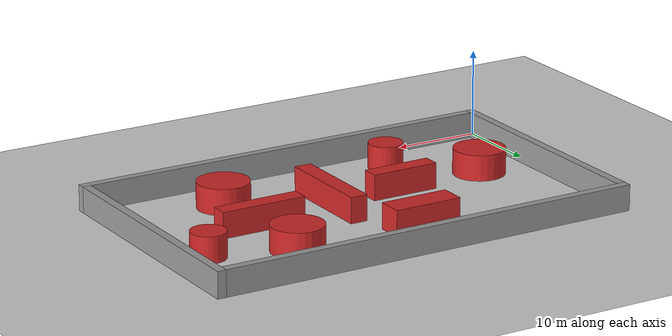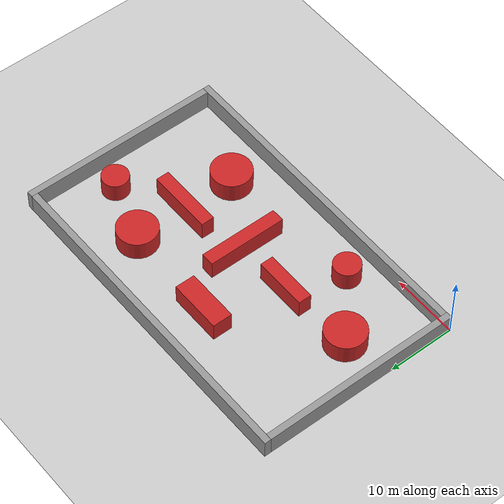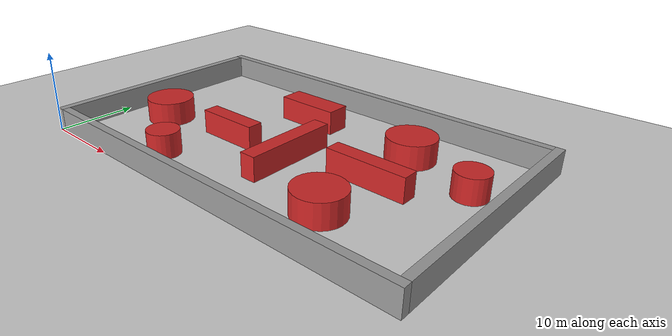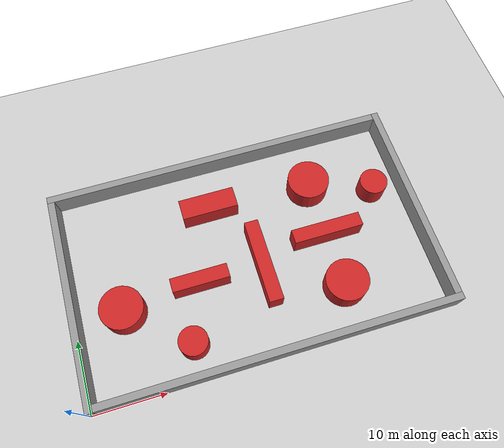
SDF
<sdf version="1.7">
 <world name="default">
  <light name="sun" type="directional">
   <pose>0 0 10 0 -0 0</pose>
   <diffuse>0.8 0.8 0.8 1</diffuse>
   <specular>0.2 0.2 0.2 1</specular>
   <attenuation>
    <range>1000</range>
    <constant>0.9</constant>
    <linear>0.01</linear>
    <quadratic>0.001</quadratic>
   </attenuation>
   <direction>-0.5 0.1 -0.9</direction>
   <spot><inner_angle>0</inner_angle><outer_angle>0</outer_angle><falloff>0</falloff></spot>
  </light>
  <model name="ground_plane">
   <static>1</static>
   <link name="link">
    <collision name="collision">
     <geometry><plane><normal>0 0 1</normal><size>100 100</size></plane></geometry>
     <surface><friction><ode><mu>100</mu><mu2>50</mu2></ode></friction></surface>
    </collision>
    <visual name="visual">
     <cast_shadows>0</cast_shadows>
     <geometry><plane><normal>0 0 1</normal><size>100 100</size></plane></geometry>
     <material>
      <script><uri>file://media/materials/scripts/gazebo.material</uri><name>Gazebo/Grey</name></script>
     </material>
    </visual>
   </link>
  </model>
  <gravity>0 0 -9.8</gravity>
  <magnetic_field>6e-06 2.3e-05 -4.2e-05</magnetic_field>
  <atmosphere type="adiabatic"/>
  <physics type="ode">
   <max_step_size>0.001</max_step_size>
   <real_time_factor>1</real_time_factor>
   <real_time_update_rate>1000</real_time_update_rate>
  </physics>
  <scene><ambient>0.4 0.4 0.4 1</ambient><background>0.7 0.7 0.7 1</background><shadows>1</shadows></scene>
  <spherical_coordinates>
   <surface_model>EARTH_WGS84</surface_model>
   <latitude_deg>0</latitude_deg>
   <longitude_deg>0</longitude_deg>
   <elevation>0</elevation>
   <heading_deg>0</heading_deg>
  </spherical_coordinates>
  <model name="unit_box">
   <link name="link">
    <inertial>
     <mass>1</mass>
     <inertia>
      <ixx>0.166667</ixx>
      <ixy>0</ixy>
      <ixz>0</ixz>
      <iyy>0.166667</iyy>
      <iyz>0</iyz>
      <izz>0.166667</izz>
     </inertia>
    </inertial>
    <visual name="visual">
     <geometry><box><size>8 2 3</size></box></geometry>
     <material>
      <script><name>Gazebo/Red</name><uri>file://media/materials/scripts/gazebo.material</uri></script>
      <shader type="pixel"><normal_map>__default__</normal_map></shader>
      <ambient>1 0 0 1</ambient>
      <diffuse>1 0 0 1</diffuse>
      <specular>0.1 0.1 0.1 1</specular>
      <emissive>0 0 0 1</emissive>
     </material>
    </visual>
    <collision name="collision">
     <geometry><box><size>8 2 3</size></box></geometry>
     <surface>
      <friction>
       <ode><mu>1</mu><mu2>1</mu2><fdir1>0 0 0</fdir1><slip1>0</slip1><slip2>0</slip2></ode>
       <torsional>
        <coefficient>1</coefficient>
        <patch_radius>0</patch_radius>
        <surface_radius>0</surface_radius>
        <use_patch_radius>1</use_patch_radius>
        <ode><slip>0</slip></ode>
       </torsional>
      </friction>
      <bounce><restitution_coefficient>0</restitution_coefficient><threshold>1e+06</threshold></bounce>
      <contact>
       <collide_without_contact>0</collide_without_contact>
       <collide_without_contact_bitmask>1</collide_without_contact_bitmask>
       <collide_bitmask>1</collide_bitmask>
       <ode>
        <soft_cfm>0</soft_cfm>
        <soft_erp>0.2</soft_erp>
        <kp>1e+13</kp>
        <kd>1</kd>
        <max_vel>0.01</max_vel>
        <min_depth>0</min_depth>
       </ode>
       <bullet>
        <split_impulse>1</split_impulse>
        <split_impulse_penetration_threshold>-0.01</split_impulse_penetration_threshold>
        <soft_cfm>0</soft_cfm>
        <soft_erp>0.2</soft_erp>
        <kp>1e+13</kp>
        <kd>1</kd>
       </bullet>
      </contact>
     </surface>
    </collision>
   </link>
   <static>0</static>
   <pose>18 13 1.5 0 -0 0</pose>
  </model>
  <model name="unit_box_clone">
   <link name="link">
    <inertial>
     <mass>1</mass>
     <inertia>
      <ixx>0.166667</ixx>
      <ixy>0</ixy>
      <ixz>0</ixz>
      <iyy>0.166667</iyy>
      <iyz>0</iyz>
      <izz>0.166667</izz>
     </inertia>
    </inertial>
    <visual name="visual">
     <geometry><box><size>8 3 3</size></box></geometry>
     <material>
      <script><name>Gazebo/Red</name><uri>file://media/materials/scripts/gazebo.material</uri></script>
      <shader type="pixel"><normal_map>__default__</normal_map></shader>
      <ambient>1 0 0 1</ambient>
      <diffuse>1 0 0 1</diffuse>
      <specular>0.1 0.1 0.1 1</specular>
      <emissive>0 0 0 1</emissive>
     </material>
    </visual>
    <collision name="collision">
     <geometry><box><size>8 3 3</size></box></geometry>
     <surface>
      <friction>
       <ode><mu>1</mu><mu2>1</mu2><fdir1>0 0 0</fdir1><slip1>0</slip1><slip2>0</slip2></ode>
       <torsional>
        <coefficient>1</coefficient>
        <patch_radius>0</patch_radius>
        <surface_radius>0</surface_radius>
        <use_patch_radius>1</use_patch_radius>
        <ode><slip>0</slip></ode>
       </torsional>
      </friction>
      <bounce><restitution_coefficient>0</restitution_coefficient><threshold>1e+06</threshold></bounce>
      <contact>
       <collide_without_contact>0</collide_without_contact>
       <collide_without_contact_bitmask>1</collide_without_contact_bitmask>
       <collide_bitmask>1</collide_bitmask>
       <ode>
        <soft_cfm>0</soft_cfm>
        <soft_erp>0.2</soft_erp>
        <kp>1e+13</kp>
        <kd>1</kd>
        <max_vel>0.01</max_vel>
        <min_depth>0</min_depth>
       </ode>
       <bullet>
        <split_impulse>1</split_impulse>
        <split_impulse_penetration_threshold>-0.01</split_impulse_penetration_threshold>
        <soft_cfm>0</soft_cfm>
        <soft_erp>0.2</soft_erp>
        <kp>1e+13</kp>
        <kd>1</kd>
       </bullet>
      </contact>
     </surface>
    </collision>
   </link>
   <static>0</static>
   <pose>22 23.5 1.5 0 -0 0</pose>
  </model>
  <model name="unit_box_clone_0">
   <link name="link">
    <inertial>
     <mass>1</mass>
     <inertia>
      <ixx>0.166667</ixx>
      <ixy>0</ixy>
      <ixz>0</ixz>
      <iyy>0.166667</iyy>
      <iyz>0</iyz>
      <izz>0.166667</izz>
     </inertia>
    </inertial>
    <visual name="visual">
     <geometry><box><size>2 12 3</size></box></geometry>
     <material>
      <script><name>Gazebo/Red</name><uri>file://media/materials/scripts/gazebo.material</uri></script>
      <shader type="pixel"><normal_map>__default__</normal_map></shader>
      <ambient>1 0 0 1</ambient>
      <diffuse>1 0 0 1</diffuse>
      <specular>0.1 0.1 0.1 1</specular>
      <emissive>0 0 0 1</emissive>
     </material>
    </visual>
    <collision name="collision">
     <geometry><box><size>2 12 3</size></box></geometry>
     <surface>
      <friction>
       <ode><mu>1</mu><mu2>1</mu2><fdir1>0 0 0</fdir1><slip1>0</slip1><slip2>0</slip2></ode>
       <torsional>
        <coefficient>1</coefficient>
        <patch_radius>0</patch_radius>
        <surface_radius>0</surface_radius>
        <use_patch_radius>1</use_patch_radius>
        <ode><slip>0</slip></ode>
       </torsional>
      </friction>
      <bounce><restitution_coefficient>0</restitution_coefficient><threshold>1e+06</threshold></bounce>
      <contact>
       <collide_without_contact>0</collide_without_contact>
       <collide_without_contact_bitmask>1</collide_without_contact_bitmask>
       <collide_bitmask>1</collide_bitmask>
       <ode>
        <soft_cfm>0</soft_cfm>
        <soft_erp>0.2</soft_erp>
        <kp>1e+13</kp>
        <kd>1</kd>
        <max_vel>0.01</max_vel>
        <min_depth>0</min_depth>
       </ode>
       <bullet>
        <split_impulse>1</split_impulse>
        <split_impulse_penetration_threshold>-0.01</split_impulse_penetration_threshold>
        <soft_cfm>0</soft_cfm>
        <soft_erp>0.2</soft_erp>
        <kp>1e+13</kp>
        <kd>1</kd>
       </bullet>
      </contact>
     </surface>
    </collision>
   </link>
   <static>0</static>
   <pose>27 13 1.5 0 -0 0</pose>
  </model>
  <model name="unit_box_clone_1">
   <link name="link">
    <inertial>
     <mass>1</mass>
     <inertia>
      <ixx>0.166667</ixx>
      <ixy>0</ixy>
      <ixz>0</ixz>
      <iyy>0.166667</iyy>
      <iyz>0</iyz>
      <izz>0.166667</izz>
     </inertia>
    </inertial>
    <visual name="visual">
     <geometry><box><size>10 2 3</size></box></geometry>
     <material>
      <script><name>Gazebo/Red</name><uri>file://media/materials/scripts/gazebo.material</uri></script>
      <shader type="pixel"><normal_map>__default__</normal_map></shader>
      <ambient>1 0 0 1</ambient>
      <diffuse>1 0 0 1</diffuse>
      <specular>0.1 0.1 0.1 1</specular>
      <emissive>0 0 0 1</emissive>
     </material>
    </visual>
    <collision name="collision">
     <geometry><box><size>10 2 3</size></box></geometry>
     <surface>
      <friction>
       <ode><mu>1</mu><mu2>1</mu2><fdir1>0 0 0</fdir1><slip1>0</slip1><slip2>0</slip2></ode>
       <torsional>
        <coefficient>1</coefficient>
        <patch_radius>0</patch_radius>
        <surface_radius>0</surface_radius>
        <use_patch_radius>1</use_patch_radius>
        <ode><slip>0</slip></ode>
       </torsional>
      </friction>
      <bounce><restitution_coefficient>0</restitution_coefficient><threshold>1e+06</threshold></bounce>
      <contact>
       <collide_without_contact>0</collide_without_contact>
       <collide_without_contact_bitmask>1</collide_without_contact_bitmask>
       <collide_bitmask>1</collide_bitmask>
       <ode>
        <soft_cfm>0</soft_cfm>
        <soft_erp>0.2</soft_erp>
        <kp>1e+13</kp>
        <kd>1</kd>
        <max_vel>0.01</max_vel>
        <min_depth>0</min_depth>
       </ode>
       <bullet>
        <split_impulse>1</split_impulse>
        <split_impulse_penetration_threshold>-0.01</split_impulse_penetration_threshold>
        <soft_cfm>0</soft_cfm>
        <soft_erp>0.2</soft_erp>
        <kp>1e+13</kp>
        <kd>1</kd>
       </bullet>
      </contact>
     </surface>
    </collision>
   </link>
   <static>0</static>
   <pose>37 15 1.5 0 -0 0</pose>
  </model>
  <model name="unit_cylinder">
   <link name="link">
    <inertial>
     <mass>1</mass>
     <inertia><ixx>0.145833</ixx><ixy>0</ixy><ixz>0</ixz><iyy>0.145833</iyy><iyz>0</iyz><izz>0.125</izz></inertia>
    </inertial>
    <visual name="visual">
     <geometry><cylinder><radius>3</radius><length>3</length></cylinder></geometry>
     <material>
      <script><name>Gazebo/Red</name><uri>file://media/materials/scripts/gazebo.material</uri></script>
      <shader type="pixel"><normal_map>__default__</normal_map></shader>
      <ambient>1 0 0 1</ambient>
      <diffuse>1 0 0 1</diffuse>
      <specular>0.1 0.1 0.1 1</specular>
      <emissive>0 0 0 1</emissive>
     </material>
    </visual>
    <collision name="collision">
     <geometry><cylinder><radius>3</radius><length>3</length></cylinder></geometry>
     <surface>
      <friction>
       <ode><mu>1</mu><mu2>1</mu2><fdir1>0 0 0</fdir1><slip1>0</slip1><slip2>0</slip2></ode>
       <torsional>
        <coefficient>1</coefficient>
        <patch_radius>0</patch_radius>
        <surface_radius>0</surface_radius>
        <use_patch_radius>1</use_patch_radius>
        <ode><slip>0</slip></ode>
       </torsional>
      </friction>
      <bounce><restitution_coefficient>0</restitution_coefficient><threshold>1e+06</threshold></bounce>
      <contact>
       <collide_without_contact>0</collide_without_contact>
       <collide_without_contact_bitmask>1</collide_without_contact_bitmask>
       <collide_bitmask>1</collide_bitmask>
       <ode>
        <soft_cfm>0</soft_cfm>
        <soft_erp>0.2</soft_erp>
        <kp>1e+13</kp>
        <kd>1</kd>
        <max_vel>0.01</max_vel>
        <min_depth>0</min_depth>
       </ode>
       <bullet>
        <split_impulse>1</split_impulse>
        <split_impulse_penetration_threshold>-0.01</split_impulse_penetration_threshold>
        <soft_cfm>0</soft_cfm>
        <soft_erp>0.2</soft_erp>
        <kp>1e+13</kp>
        <kd>1</kd>
       </bullet>
      </contact>
     </surface>
    </collision>
   </link>
   <static>0</static>
   <pose>7 12 1.5 0 -0 0</pose>
  </model>
  <model name="unit_cylinder_clone">
   <link name="link">
    <inertial>
     <mass>1</mass>
     <inertia><ixx>0.145833</ixx><ixy>0</ixy><ixz>0</ixz><iyy>0.145833</iyy><iyz>0</iyz><izz>0.125</izz></inertia>
    </inertial>
    <visual name="visual">
     <geometry><cylinder><radius>2</radius><length>3</length></cylinder></geometry>
     <material>
      <script><name>Gazebo/Red</name><uri>file://media/materials/scripts/gazebo.material</uri></script>
      <shader type="pixel"><normal_map>__default__</normal_map></shader>
      <ambient>1 0 0 1</ambient>
      <diffuse>1 0 0 1</diffuse>
      <specular>0.1 0.1 0.1 1</specular>
      <emissive>0 0 0 1</emissive>
     </material>
    </visual>
    <collision name="collision">
     <geometry><cylinder><radius>2</radius><length>3</length></cylinder></geometry>
     <surface>
      <friction>
       <ode><mu>1</mu><mu2>1</mu2><fdir1>0 0 0</fdir1><slip1>0</slip1><slip2>0</slip2></ode>
       <torsional>
        <coefficient>1</coefficient>
        <patch_radius>0</patch_radius>
        <surface_radius>0</surface_radius>
        <use_patch_radius>1</use_patch_radius>
        <ode><slip>0</slip></ode>
       </torsional>
      </friction>
      <bounce><restitution_coefficient>0</restitution_coefficient><threshold>1e+06</threshold></bounce>
      <contact>
       <collide_without_contact>0</collide_without_contact>
       <collide_without_contact_bitmask>1</collide_without_contact_bitmask>
       <collide_bitmask>1</collide_bitmask>
       <ode>
        <soft_cfm>0</soft_cfm>
        <soft_erp>0.2</soft_erp>
        <kp>1e+13</kp>
        <kd>1</kd>
        <max_vel>0.01</max_vel>
        <min_depth>0</min_depth>
       </ode>
       <bullet>
        <split_impulse>1</split_impulse>
        <split_impulse_penetration_threshold>-0.01</split_impulse_penetration_threshold>
        <soft_cfm>0</soft_cfm>
        <soft_erp>0.2</soft_erp>
        <kp>1e+13</kp>
        <kd>1</kd>
       </bullet>
      </contact>
     </surface>
    </collision>
   </link>
   <static>0</static>
   <pose>46 20 1.5 0 -0 0</pose>
  </model>
  <model name="unit_cylinder_clone_1">
   <link name="link">
    <inertial>
     <mass>1</mass>
     <inertia><ixx>0.145833</ixx><ixy>0</ixy><ixz>0</ixz><iyy>0.145833</iyy><iyz>0</iyz><izz>0.125</izz></inertia>
    </inertial>
    <visual name="visual">
     <geometry><cylinder><radius>3</radius><length>3</length></cylinder></geometry>
     <material>
      <script><name>Gazebo/Red</name><uri>file://media/materials/scripts/gazebo.material</uri></script>
      <shader type="pixel"><normal_map>__default__</normal_map></shader>
      <ambient>1 0 0 1</ambient>
      <diffuse>1 0 0 1</diffuse>
      <specular>0.1 0.1 0.1 1</specular>
      <emissive>0 0 0 1</emissive>
     </material>
    </visual>
    <collision name="collision">
     <geometry><cylinder><radius>3</radius><length>3</length></cylinder></geometry>
     <surface>
      <friction>
       <ode><mu>1</mu><mu2>1</mu2><fdir1>0 0 0</fdir1><slip1>0</slip1><slip2>0</slip2></ode>
       <torsional>
        <coefficient>1</coefficient>
        <patch_radius>0</patch_radius>
        <surface_radius>0</surface_radius>
        <use_patch_radius>1</use_patch_radius>
        <ode><slip>0</slip></ode>
       </torsional>
      </friction>
      <bounce><restitution_coefficient>0</restitution_coefficient><threshold>1e+06</threshold></bounce>
      <contact>
       <collide_without_contact>0</collide_without_contact>
       <collide_without_contact_bitmask>1</collide_without_contact_bitmask>
       <collide_bitmask>1</collide_bitmask>
       <ode>
        <soft_cfm>0</soft_cfm>
        <soft_erp>0.2</soft_erp>
        <kp>1e+13</kp>
        <kd>1</kd>
        <max_vel>0.01</max_vel>
        <min_depth>0</min_depth>
       </ode>
       <bullet>
        <split_impulse>1</split_impulse>
        <split_impulse_penetration_threshold>-0.01</split_impulse_penetration_threshold>
        <soft_cfm>0</soft_cfm>
        <soft_erp>0.2</soft_erp>
        <kp>1e+13</kp>
        <kd>1</kd>
       </bullet>
      </contact>
     </surface>
    </collision>
   </link>
   <static>0</static>
   <pose>37 7 1.5 0 -0 0</pose>
  </model>
  <model name="unit_cylinder_clone_2">
   <link name="link">
    <inertial>
     <mass>1</mass>
     <inertia><ixx>0.145833</ixx><ixy>0</ixy><ixz>0</ixz><iyy>0.145833</iyy><iyz>0</iyz><izz>0.125</izz></inertia>
    </inertial>
    <visual name="visual">
     <geometry><cylinder><radius>3</radius><length>3</length></cylinder></geometry>
     <material>
      <script><name>Gazebo/Red</name><uri>file://media/materials/scripts/gazebo.material</uri></script>
      <shader type="pixel"><normal_map>__default__</normal_map></shader>
      <ambient>1 0 0 1</ambient>
      <diffuse>1 0 0 1</diffuse>
      <specular>0.1 0.1 0.1 1</specular>
      <emissive>0 0 0 1</emissive>
     </material>
    </visual>
    <collision name="collision">
     <geometry><cylinder><radius>3</radius><length>3</length></cylinder></geometry>
     <surface>
      <friction>
       <ode><mu>1</mu><mu2>1</mu2><fdir1>0 0 0</fdir1><slip1>0</slip1><slip2>0</slip2></ode>
       <torsional>
        <coefficient>1</coefficient>
        <patch_radius>0</patch_radius>
        <surface_radius>0</surface_radius>
        <use_patch_radius>1</use_patch_radius>
        <ode><slip>0</slip></ode>
       </torsional>
      </friction>
      <bounce><restitution_coefficient>0</restitution_coefficient><threshold>1e+06</threshold></bounce>
      <contact>
       <collide_without_contact>0</collide_without_contact>
       <collide_without_contact_bitmask>1</collide_without_contact_bitmask>
       <collide_bitmask>1</collide_bitmask>
       <ode>
        <soft_cfm>0</soft_cfm>
        <soft_erp>0.2</soft_erp>
        <kp>1e+13</kp>
        <kd>1</kd>
        <max_vel>0.01</max_vel>
        <min_depth>0</min_depth>
       </ode>
       <bullet>
        <split_impulse>1</split_impulse>
        <split_impulse_penetration_threshold>-0.01</split_impulse_penetration_threshold>
        <soft_cfm>0</soft_cfm>
        <soft_erp>0.2</soft_erp>
        <kp>1e+13</kp>
        <kd>1</kd>
       </bullet>
      </contact>
     </surface>
    </collision>
   </link>
   <static>0</static>
   <pose>37 23 1.5 0 -0 0</pose>
  </model>
  <model name="unit_cylinder_clone_0">
   <link name="link">
    <inertial>
     <mass>1</mass>
     <inertia><ixx>0.145833</ixx><ixy>0</ixy><ixz>0</ixz><iyy>0.145833</iyy><iyz>0</iyz><izz>0.125</izz></inertia>
    </inertial>
    <visual name="visual">
     <geometry><cylinder><radius>2</radius><length>3</length></cylinder></geometry>
     <material>
      <script><name>Gazebo/Red</name><uri>file://media/materials/scripts/gazebo.material</uri></script>
      <shader type="pixel"><normal_map>__default__</normal_map></shader>
      <ambient>1 0 0 1</ambient>
      <diffuse>1 0 0 1</diffuse>
      <specular>0.1 0.1 0.1 1</specular>
      <emissive>0 0 0 1</emissive>
     </material>
    </visual>
    <collision name="collision">
     <geometry><cylinder><radius>2</radius><length>3</length></cylinder></geometry>
     <surface>
      <friction>
       <ode><mu>1</mu><mu2>1</mu2><fdir1>0 0 0</fdir1><slip1>0</slip1><slip2>0</slip2></ode>
       <torsional>
        <coefficient>1</coefficient>
        <patch_radius>0</patch_radius>
        <surface_radius>0</surface_radius>
        <use_patch_radius>1</use_patch_radius>
        <ode><slip>0</slip></ode>
       </torsional>
      </friction>
      <bounce><restitution_coefficient>0</restitution_coefficient><threshold>1e+06</threshold></bounce>
      <contact>
       <collide_without_contact>0</collide_without_contact>
       <collide_without_contact_bitmask>1</collide_without_contact_bitmask>
       <collide_bitmask>1</collide_bitmask>
       <ode>
        <soft_cfm>0</soft_cfm>
        <soft_erp>0.2</soft_erp>
        <kp>1e+13</kp>
        <kd>1</kd>
        <max_vel>0.01</max_vel>
        <min_depth>0</min_depth>
       </ode>
       <bullet>
        <split_impulse>1</split_impulse>
        <split_impulse_penetration_threshold>-0.01</split_impulse_penetration_threshold>
        <soft_cfm>0</soft_cfm>
        <soft_erp>0.2</soft_erp>
        <kp>1e+13</kp>
        <kd>1</kd>
       </bullet>
      </contact>
     </surface>
    </collision>
   </link>
   <static>0</static>
   <pose>15 5 1.5 0 -0 0</pose>
  </model>
  <model name="unit_box_0">
   <link name="link">
    <inertial>
     <mass>1</mass>
     <inertia>
      <ixx>0.166667</ixx>
      <ixy>0</ixy>
      <ixz>0</ixz>
      <iyy>0.166667</iyy>
      <iyz>0</iyz>
      <izz>0.166667</izz>
     </inertia>
    </inertial>
    <visual name="visual">
     <geometry><box><size>1 30 3</size></box></geometry>
     <material>
      <script><name>Gazebo/Grey</name><uri>file://media/materials/scripts/gazebo.material</uri></script>
      <shader type="pixel"><normal_map>__default__</normal_map></shader>
      <ambient>0.3 0.3 0.3 1</ambient>
      <diffuse>0.7 0.7 0.7 1</diffuse>
      <specular>0.01 0.01 0.01 1</specular>
      <emissive>0 0 0 1</emissive>
     </material>
    </visual>
    <collision name="collision">
     <geometry><box><size>1 30 3</size></box></geometry>
     <surface>
      <friction>
       <ode><mu>1</mu><mu2>1</mu2><fdir1>0 0 0</fdir1><slip1>0</slip1><slip2>0</slip2></ode>
       <torsional>
        <coefficient>1</coefficient>
        <patch_radius>0</patch_radius>
        <surface_radius>0</surface_radius>
        <use_patch_radius>1</use_patch_radius>
        <ode><slip>0</slip></ode>
       </torsional>
      </friction>
      <bounce><restitution_coefficient>0</restitution_coefficient><threshold>1e+06</threshold></bounce>
      <contact>
       <collide_without_contact>0</collide_without_contact>
       <collide_without_contact_bitmask>1</collide_without_contact_bitmask>
       <collide_bitmask>1</collide_bitmask>
       <ode>
        <soft_cfm>0</soft_cfm>
        <soft_erp>0.2</soft_erp>
        <kp>1e+13</kp>
        <kd>1</kd>
        <max_vel>0.01</max_vel>
        <min_depth>0</min_depth>
       </ode>
       <bullet>
        <split_impulse>1</split_impulse>
        <split_impulse_penetration_threshold>-0.01</split_impulse_penetration_threshold>
        <soft_cfm>0</soft_cfm>
        <soft_erp>0.2</soft_erp>
        <kp>1e+13</kp>
        <kd>1</kd>
       </bullet>
      </contact>
     </surface>
    </collision>
   </link>
   <static>0</static>
   <pose>0.5 15 1.5 0 -0 0</pose>
  </model>
  <model name="unit_box_0_clone">
   <link name="link">
    <inertial>
     <mass>1</mass>
     <inertia>
      <ixx>0.166667</ixx>
      <ixy>0</ixy>
      <ixz>0</ixz>
      <iyy>0.166667</iyy>
      <iyz>0</iyz>
      <izz>0.166667</izz>
     </inertia>
    </inertial>
    <visual name="visual">
     <geometry><box><size>1 30 3</size></box></geometry>
     <material>
      <script><name>Gazebo/Grey</name><uri>file://media/materials/scripts/gazebo.material</uri></script>
      <shader type="pixel"><normal_map>__default__</normal_map></shader>
      <ambient>0.3 0.3 0.3 1</ambient>
      <diffuse>0.7 0.7 0.7 1</diffuse>
      <specular>0.01 0.01 0.01 1</specular>
      <emissive>0 0 0 1</emissive>
     </material>
    </visual>
    <collision name="collision">
     <geometry><box><size>1 30 3</size></box></geometry>
     <surface>
      <friction>
       <ode><mu>1</mu><mu2>1</mu2><fdir1>0 0 0</fdir1><slip1>0</slip1><slip2>0</slip2></ode>
       <torsional>
        <coefficient>1</coefficient>
        <patch_radius>0</patch_radius>
        <surface_radius>0</surface_radius>
        <use_patch_radius>1</use_patch_radius>
        <ode><slip>0</slip></ode>
       </torsional>
      </friction>
      <bounce><restitution_coefficient>0</restitution_coefficient><threshold>1e+06</threshold></bounce>
      <contact>
       <collide_without_contact>0</collide_without_contact>
       <collide_without_contact_bitmask>1</collide_without_contact_bitmask>
       <collide_bitmask>1</collide_bitmask>
       <ode>
        <soft_cfm>0</soft_cfm>
        <soft_erp>0.2</soft_erp>
        <kp>1e+13</kp>
        <kd>1</kd>
        <max_vel>0.01</max_vel>
        <min_depth>0</min_depth>
       </ode>
       <bullet>
        <split_impulse>1</split_impulse>
        <split_impulse_penetration_threshold>-0.01</split_impulse_penetration_threshold>
        <soft_cfm>0</soft_cfm>
        <soft_erp>0.2</soft_erp>
        <kp>1e+13</kp>
        <kd>1</kd>
       </bullet>
      </contact>
     </surface>
    </collision>
   </link>
   <static>0</static>
   <pose>50.5 16 1.5 0 -0 0</pose>
  </model>
  <model name="unit_box_0_clone_0">
   <link name="link">
    <inertial>
     <mass>1</mass>
     <inertia>
      <ixx>0.166667</ixx>
      <ixy>0</ixy>
      <ixz>0</ixz>
      <iyy>0.166667</iyy>
      <iyz>0</iyz>
      <izz>0.166667</izz>
     </inertia>
    </inertial>
    <visual name="visual">
     <geometry><box><size>50 1 3</size></box></geometry>
     <material>
      <script><name>Gazebo/Grey</name><uri>file://media/materials/scripts/gazebo.material</uri></script>
      <shader type="pixel"><normal_map>__default__</normal_map></shader>
      <ambient>0.3 0.3 0.3 1</ambient>
      <diffuse>0.7 0.7 0.7 1</diffuse>
      <specular>0.01 0.01 0.01 1</specular>
      <emissive>0 0 0 1</emissive>
     </material>
    </visual>
    <collision name="collision">
     <geometry><box><size>50 1 3</size></box></geometry>
     <surface>
      <friction>
       <ode><mu>1</mu><mu2>1</mu2><fdir1>0 0 0</fdir1><slip1>0</slip1><slip2>0</slip2></ode>
       <torsional>
        <coefficient>1</coefficient>
        <patch_radius>0</patch_radius>
        <surface_radius>0</surface_radius>
        <use_patch_radius>1</use_patch_radius>
        <ode><slip>0</slip></ode>
       </torsional>
      </friction>
      <bounce><restitution_coefficient>0</restitution_coefficient><threshold>1e+06</threshold></bounce>
      <contact>
       <collide_without_contact>0</collide_without_contact>
       <collide_without_contact_bitmask>1</collide_without_contact_bitmask>
       <collide_bitmask>1</collide_bitmask>
       <ode>
        <soft_cfm>0</soft_cfm>
        <soft_erp>0.2</soft_erp>
        <kp>1e+13</kp>
        <kd>1</kd>
        <max_vel>0.01</max_vel>
        <min_depth>0</min_depth>
       </ode>
       <bullet>
        <split_impulse>1</split_impulse>
        <split_impulse_penetration_threshold>-0.01</split_impulse_penetration_threshold>
        <soft_cfm>0</soft_cfm>
        <soft_erp>0.2</soft_erp>
        <kp>1e+13</kp>
        <kd>1</kd>
       </bullet>
      </contact>
     </surface>
    </collision>
   </link>
   <static>0</static>
   <pose>25 30.5 1.5 0 -0 0</pose>
  </model>
  <model name="unit_box_0_clone_1">
   <link name="link">
    <inertial>
     <mass>1</mass>
     <inertia>
      <ixx>0.166667</ixx>
      <ixy>0</ixy>
      <ixz>0</ixz>
      <iyy>0.166667</iyy>
      <iyz>0</iyz>
      <izz>0.166667</izz>
     </inertia>
    </inertial>
    <visual name="visual">
     <geometry><box><size>50 1 3</size></box></geometry>
     <material>
      <script><name>Gazebo/Grey</name><uri>file://media/materials/scripts/gazebo.material</uri></script>
      <shader type="pixel"><normal_map>__default__</normal_map></shader>
      <ambient>0.3 0.3 0.3 1</ambient>
      <diffuse>0.7 0.7 0.7 1</diffuse>
      <specular>0.01 0.01 0.01 1</specular>
      <emissive>0 0 0 1</emissive>
     </material>
    </visual>
    <collision name="collision">
     <geometry><box><size>50 1 3</size></box></geometry>
     <surface>
      <friction>
       <ode><mu>1</mu><mu2>1</mu2><fdir1>0 0 0</fdir1><slip1>0</slip1><slip2>0</slip2></ode>
       <torsional>
        <coefficient>1</coefficient>
        <patch_radius>0</patch_radius>
        <surface_radius>0</surface_radius>
        <use_patch_radius>1</use_patch_radius>
        <ode><slip>0</slip></ode>
       </torsional>
      </friction>
      <bounce><restitution_coefficient>0</restitution_coefficient><threshold>1e+06</threshold></bounce>
      <contact>
       <collide_without_contact>0</collide_without_contact>
       <collide_without_contact_bitmask>1</collide_without_contact_bitmask>
       <collide_bitmask>1</collide_bitmask>
       <ode>
        <soft_cfm>0</soft_cfm>
        <soft_erp>0.2</soft_erp>
        <kp>1e+13</kp>
        <kd>1</kd>
        <max_vel>0.01</max_vel>
        <min_depth>0</min_depth>
       </ode>
       <bullet>
        <split_impulse>1</split_impulse>
        <split_impulse_penetration_threshold>-0.01</split_impulse_penetration_threshold>
        <soft_cfm>0</soft_cfm>
        <soft_erp>0.2</soft_erp>
        <kp>1e+13</kp>
        <kd>1</kd>
       </bullet>
      </contact>
     </surface>
    </collision>
   </link>
   <static>0</static>
   <pose>26 0.5 1.5 0 -0 0</pose>
  </model>
 </world>
</sdf>
